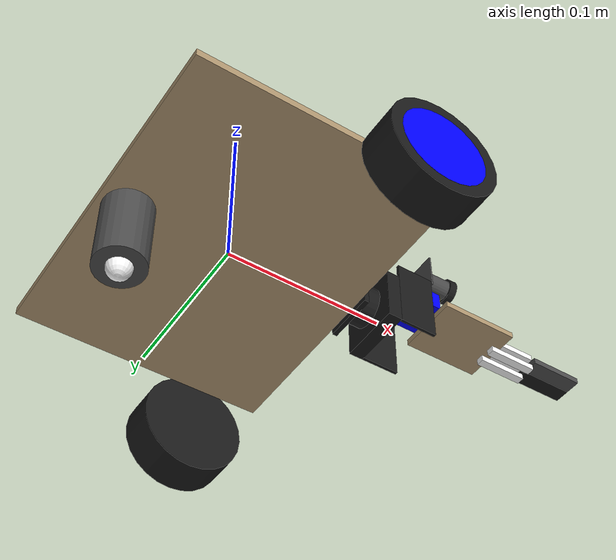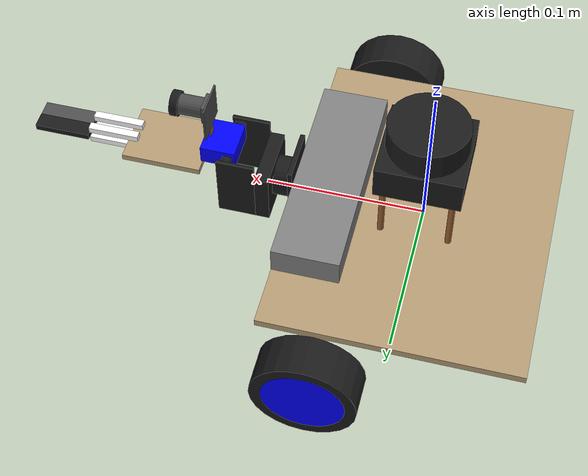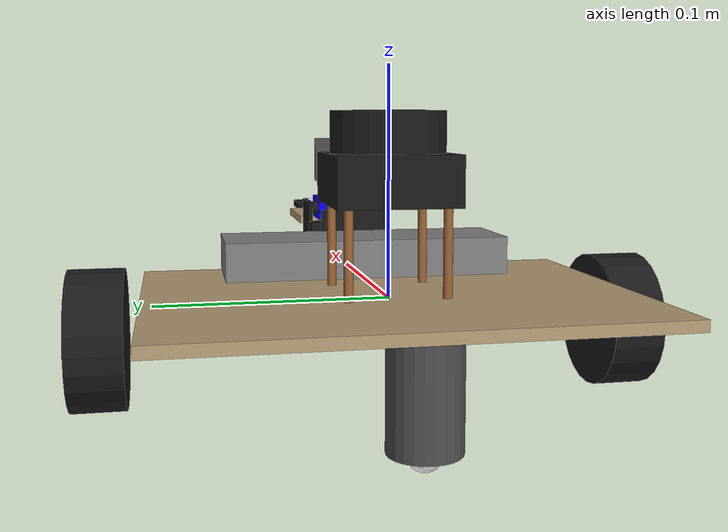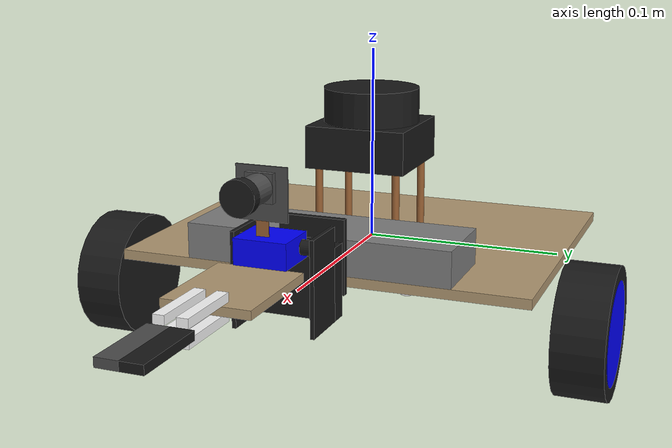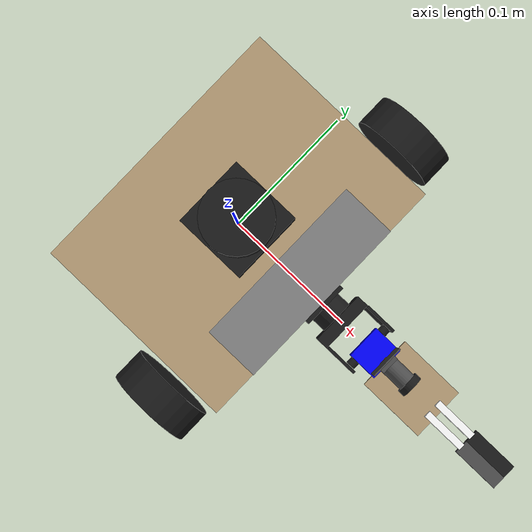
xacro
<?xml version="1.0"?>
<robot name="doall_robot" xmlns:xacro="http://ros.org/wiki/xacro">
 <!--
ros2 launch urdf_tutorial display.launch.py model:=/home/ghaith-mhamdi/warehouse_ws/src/doall/model/robot.xacro rvizconfig:=/home/ghaith-mhamdi/warehouse_ws/src/doall/rviz/robot_description.rviz
-->
<!--to view launch simulation from RVIZ :
rviz2 -d  /home/ghaith-mhamdi/warehouse_ws/src/doall/rviz/view_all.rviz
-->

<material name="red">
    <color rgba="1 0 0 1"/>
</material>

<material name="yellow">
    <color rgba="1 1 0 1"/>
</material>

<material name="blue">
    <color rgba="0 0 1 1"/>
</material>

<material name="green">
    <color rgba="0 1 0 1"/>
</material>

<material name="white">
    <color rgba="1 1 1 1"/>
</material>

<material name="black">
    <color rgba="0.1 0.1 0.1 1"/>
</material>

<material name="metallic_blue">
  <color rgba="0.2 0.4 0.8 1"/>
</material>

<material name="orange">
    <color rgba="1.0 0.5 0.0 1.0"/>
    <ambient>1.0 0.5 0.0 1.0</ambient>
    <diffuse>1.0 0.5 0.0 1.0</diffuse>
    <specular>0.1 0.1 0.1 1.0</specular>
</material>

<material name="gray">
  <color rgba="0.5 0.5 0.5 1.0"/>
</material>

<material name="dark_gray">
  <color rgba="0.3 0.3 0.3 1.0"/>
</material>

<material name="plywood_colour">
  <color rgba="0.70 0.60 0.45 1.0"/>
</material>

<material name="copper_colour">
  <color rgba="0.60 0.38 0.20 1.0"/>
</material>

<xacro:property name="pi_constant" value="3.141592"/>
<!--Body_Dimensions-->
<xacro:property name="a" value="0.16"/>
<xacro:property name="b" value="0.005"/>
<xacro:property name="c" value="0.210"/>
<!--WheelRight-->
<xacro:property name="r" value="0.0325"/>
<xacro:property name="d" value="0.025"/>
<xacro:property name="zw" value="0.0225"/>
<xacro:property name="xw" value="0.043"/>
<xacro:property name="yw" value="0.125"/>
<!--caster-->
<xacro:property name="rc" value="0.0075"/>
<xacro:property name="zc" value="${zw+r}"/>
<xacro:property name="xc" value="-0.062"/>
<!--Lidar-->
<xacro:property name="xl" value="0.002"/>
<xacro:property name="al" value="0.053"/>
<xacro:property name="rl" value="0.025"/>
<xacro:property name="drl" value="0.018"/>
<xacro:property name="dal" value="0.022"/>

<!--Materials_density(contre_plaqué,plastic)-->
<xacro:property name="d1" value="700.0"/>
<xacro:property name="d2" value="1400.0"/>

<!--Body_Mass-->
<xacro:property name="m1" value="${d1*a*b*c}"/>
<!--wheels_mass-->
<xacro:property name="m2" value="${d2*pi_constant*r*r*d}"/>
<!--CasterWheels_Mass-->
<xacro:property name="m3" value="${2*m2}"/>

<!--Body_MomentsOfInertia-->
<xacro:property name="Ix_body" value="${(1.0/12.0)*m1*(b*b+c*c)}"/>
<xacro:property name="Iy_body" value="${(1.0/12.0)*m1*(a*a+b*b)}"/>
<xacro:property name="Iz_body" value="${(1.0/12.0)*m1*(a*a+c*c)}"/>

<!--Wheels_MomentsOfInertia-->
<xacro:property name="Iz_wheel" value="${0.5*m2*r*r}"/>
<xacro:property name="I_wheel" value="${(1.0/12.0)*m2*(3*r*r+d*d)}"/>

<!--CasterSphere_MomentsOfInertia-->
<xacro:property name="Iz_caster" value="${0.5*m3*2*rc*2*rc}"/>
<xacro:property name="I_caster" value="${(1.0/12.0)*m3*(3*2*rc*2*rc+0.035*0.035)}"/>

<!--inertia-->
<xacro:macro name="inertia_body">
    <inertial>
        <origin xyz="0 0 0" rpy="0 0 0"/>
        <mass value="${m1}"/>
        <inertia ixx="${Ix_body}" ixy="0.0" ixz="0.0" iyy="${Iy_body}" iyz="0.0" izz="${Iz_body}"/>
    </inertial>
</xacro:macro>

<xacro:macro name="inertia_wheel">
    <inertial>
        <origin xyz="0 0 0" rpy="${pi_constant/2.0} 0 0"/>
        <mass value="${m2}"/>
        <inertia ixx="${I_wheel}" ixy="0.0" ixz="0.0" iyy="${I_wheel}" iyz="0.0" izz="${Iz_wheel}"/>
    </inertial>
</xacro:macro>

<xacro:macro name="inertia_caster">
    <inertial>
        <origin xyz="0 0 0" rpy="0 0 0"/>
        <mass value="${m3}"/>
        <inertia ixx="${I_caster}" ixy="0.0" ixz="0.0" iyy="${I_caster}" iyz="0.0" izz="${I_caster}"/>
    </inertial>
</xacro:macro>

<!-- Include base -->
<xacro:include filename="$(find doall)/model/base.xacro"/>
<!-- Include pan_tilt -->
<xacro:include filename="$(find doall)/model/pan_tilt.xacro"/>
<!-- Include gripper -->
<xacro:include filename="$(find doall)/model/gripper.xacro"/>
<!-- Include wheels -->
<xacro:include filename="$(find doall)/model/wheels.xacro"/>
<!-- Include lidar -->
<xacro:include filename="$(find doall)/model/lidar.xacro"/>
<!-- Include camera -->
<xacro:include filename="$(find doall)/model/camera.xacro"/>
<!--include the file that defines extra Gazebo options and motion control drivers-->
<xacro:include filename="$(find doall)/model/robot.gazebo.xacro" />

<!--joints-->
<link name="base_footprint"></link>
<joint name="base_link_joint" type="fixed">
    <parent link="base_footprint"/>
    <child link="base_link"/>
    <origin xyz="0 0 0" rpy="0 0 0"/>
</joint>

<joint name="wheel1_joint" type="continuous">
    <parent link="base_link"/>
    <child link="wheel1_link"/>
    <origin xyz="${xw} ${-yw} ${-zw}" rpy="0 0 0"/>
    <axis xyz="0 1 0"/>
    <limit effort="50000" velocity="10"/>
    <dynamics damping="0.00001" friction="0.00001"/>
</joint>

<joint name="wheel2_joint" type="continuous">
    <parent link="base_link"/>
    <child link="wheel2_link"/>
    <origin xyz="${xw} ${yw} ${-zw}" rpy="0 0 0"/>
    <axis xyz="0 1 0"/>
    <limit effort="50000" velocity="10"/>
    <dynamics damping="0.00001" friction="0.00001"/>
</joint>

<joint name="pan_tilt_joint" type="fixed">
    <parent link="base_link"/>
    <child link="base_pan_tilt"/>
    <origin xyz="${a/2+0.0015} 0 0.0085" rpy="0 -1.57 3.14"/>
</joint>

<joint name="gripper_joint" type="fixed">
    <parent link="part_3_link"/>
    <child link="gripper_base"/>
    <origin xyz="-0.008 0 0.041" rpy="0 -1.57 0"/>
</joint>

<joint name="camera_joint" type="fixed">
  <parent link="part_3_link"/>
  <child  link="camera_link"/>
  <origin xyz="0.026 0 0.013" rpy="3.14 -1.57 0"/>
</joint>

<link name="camera_link_optical"/>
<joint type="fixed" name="camera_optical_joint">
  <origin xyz="0.024 0 0" rpy="0 0 0"/>
  <child link="camera_link_optical"/>
  <parent link="camera_link"/>
</joint>

</robot>

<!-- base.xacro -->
<robot xmlns:xacro="http://ros.org/wiki/xacro">

  <!--robot_body-->
  <link name="base_link">
      <visual>
          <geometry>
              <box size="${a} ${c} ${b}"/>
          </geometry>
          <origin xyz="0 0 0" rpy="0 0 0"/>
          <material name="plywood_colour"/>
      </visual>
      <collision>
          <geometry>
              <box size="${a} ${c} ${b}"/>
          </geometry>
          <origin xyz="0 0 0" rpy="0 0 0"/>
      </collision>
      <xacro:inertia_body/>
  </link>

<link name="caster_link">
      <visual>
          <geometry>
              <cylinder radius="${2*rc}" length="${zc-rc}"/>
          </geometry>
          <origin xyz="0 0 0" rpy="0 0 0"/>
          <material name="dark_gray"/>
      </visual>

      <visual>
          <geometry>
              <sphere radius="${rc}"/>
          </geometry>
          <origin xyz="0 0 ${(-zc+rc)/2}" rpy="0 0 0"/>
          <material name="white"/>
      </visual>

      <collision>
          <geometry>
              <cylinder radius="${2*rc}" length="${zc-rc}"/>
          </geometry>
          <origin xyz="0 0 0" rpy="0 0 0"/>
      </collision>

      <collision>
          <geometry>
              <sphere radius="${rc}"/>
          </geometry>
          <origin xyz="0 0 ${(-zc+rc)/2}" rpy="0 0 0"/>
      </collision>

      <xacro:inertia_caster/>
  </link>
  <joint name="caster_joint" type="fixed">
      <parent link="base_link"/>
      <child link="caster_link"/>
      <origin xyz="${xc} 0 ${(-zc+rc)/2}" rpy="0 0 0"/>
  </joint>

  <link name="support_lidar">
      <visual>
          <geometry>
              <cylinder radius="0.002" length="0.038"/>
          </geometry>
          <origin xyz="0.021 0.021 0" rpy="0 0 0"/>
          <material name="copper_colour"/>
      </visual>
      <collision>
          <geometry>
              <cylinder radius="0.002" length="0.038"/>
          </geometry>
          <origin xyz="0.021 0.021 0" rpy="0 0 0"/>
      </collision>
      <visual>
          <geometry>
              <cylinder radius="0.002" length="0.038"/>
          </geometry>
          <origin xyz="-0.021 0.021 0" rpy="0 0 0"/>
          <material name="copper_colour"/>
      </visual>
      <collision>
          <geometry>
              <cylinder radius="0.002" length="0.038"/>
          </geometry>
          <origin xyz="-0.021 0.021 0" rpy="0 0 0"/>
      </collision>
      <visual>
          <geometry>
              <cylinder radius="0.002" length="0.038"/>
          </geometry>
          <origin xyz="0.021 -0.021 0" rpy="0 0 0"/>
          <material name="copper_colour"/>
      </visual>
      <collision>
          <geometry>
              <cylinder radius="0.002" length="0.038"/>
          </geometry>
          <origin xyz="0.021 -0.021 0" rpy="0 0 0"/>
      </collision>
      <visual>
          <geometry>
              <cylinder radius="0.002" length="0.038"/>
          </geometry>
          <origin xyz="-0.021 -0.021 0" rpy="0 0 0"/>
          <material name="copper_colour"/>
      </visual>
      <collision>
          <geometry>
              <cylinder radius="0.002" length="0.038"/>
          </geometry>
          <origin xyz="-0.021 -0.021 0" rpy="0 0 0"/>
      </collision>
  </link>
  <joint name="support_lidar_joint" type="fixed">
      <parent link="base_link"/>
      <child link="support_lidar"/>
      <origin xyz="0.002 0 ${b/2+0.019}" rpy="0 0 0"/>
  </joint>

  <link name="battery_link">
      <visual>
          <geometry>
              <box size="0.042 0.135 0.018"/>
          </geometry>
          <origin xyz="0 0 0" rpy="0 0 0"/>
          <material name="gray"/>
      </visual>
      <collision>
          <geometry>
              <box size="0.042 0.135 0.018"/>
          </geometry>
          <origin xyz="0 0 0" rpy="0 0 0"/>
      </collision>
      <inertial>
          <mass value="0.255"/>
          <origin xyz="0 0 0" rpy="0 0 0"/>
          <inertia ixx="3.94e-04" iyy="4.44e-05" izz="4.25e-04" ixy="0.0" ixz="0.0" iyz="0.0"/>
      </inertial>
  </link>
  <joint name="battery_joint" type="fixed">
      <parent link="base_link"/>
      <child link="battery_link"/>
      <origin xyz="${a/2-0.021} 0 ${b/2+0.009}" rpy="0 0 0"/>
  </joint>

</robot>

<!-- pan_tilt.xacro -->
<robot xmlns:xacro="http://ros.org/wiki/xacro">

    <link name="base_pan_tilt">
      <visual>
          <geometry>
              <box size="0.037 0.033 0.003"/>
          </geometry>
          <origin xyz="0.004 0 0" rpy="0 0 0"/>
          <material name="black"/>
      </visual>
      <collision>
          <geometry>
              <box size="0.037 0.033 0.003"/>
          </geometry>
          <origin xyz="0.004 0 0" rpy="0 0 0"/>
      </collision>
      <visual>
          <geometry>
              <cylinder radius="0.0125" length="0.011"/>
          </geometry>
          <origin xyz="0 0 0.007" rpy="0 0 0"/>
          <material name="black"/>
      </visual>
      <collision>
          <geometry>
              <cylinder radius="0.0125" length="0.011"/>
          </geometry>
          <origin xyz="0 0 0.007" rpy="0 0 0"/>
      </collision>
      <inertial>
        <mass value="0.02"/>
        <origin xyz="0 0 0.005" rpy="0 0 0"/>
        <inertia ixx="0.000003" ixy="0.0" ixz="0.0"
                 iyy="0.000003" iyz="0.0"
                 izz="0.000003"/>
      </inertial>
  </link>

  <link name="part_2_link">
      <visual>
          <geometry>
              <box size="0.035 0.040 0.009"/>
          </geometry>
          <origin xyz="-0.0025 0 0" rpy="0 0 0"/>
          <material name="black"/>
      </visual>
      <collision>
          <geometry>
              <box size="0.035 0.040 0.009"/>
          </geometry>
          <origin xyz="-0.0025 0 0" rpy="0 0 0"/>
      </collision>
      <visual>
          <geometry>
              <box size="0.045 0.002 0.024"/>
          </geometry>
          <origin xyz="0.0025 0.019 0.0165" rpy="0 0 0"/>
          <material name="black"/>
      </visual>
      <collision>
          <geometry>
              <box size="0.045 0.002 0.024"/>
          </geometry>
          <origin xyz="0.0025 0.019 0.0165" rpy="0 0 0"/>
      </collision>
      <visual>
          <geometry>
              <box size="0.045 0.002 0.024"/>
          </geometry>
          <origin xyz="0.0025 -0.019 0.0165" rpy="0 0 0"/>
          <material name="black"/>
      </visual>
      <collision>
          <geometry>
              <box size="0.045 0.002 0.024"/>
          </geometry>
          <origin xyz="0.0025 -0.019 0.0165" rpy="0 0 0"/>
      </collision>
      <inertial>
        <mass value="0.03"/>
        <origin xyz="0 0 0.01" rpy="0 0 0"/>
        <inertia ixx="0.00001" ixy="0.0" ixz="0.0"
                 iyy="0.00001" iyz="0.0"
                 izz="0.00001"/>
      </inertial>
  </link>
  <joint name="gripper_roll_joint" type="revolute">
      <parent link="base_pan_tilt"/>
      <child link="part_2_link"/>
      <origin xyz="0 0 0.0172" rpy="0 0 0"/>
      <axis xyz="0 0 1"/>
      <limit lower="-1.57" upper="1.57" effort="10" velocity="2.0"/>
      <dynamics damping="0.5" friction="0.1"/>
  </joint>

  <link name="part_3_link">
      <visual>
          <geometry>
              <box size="0.012 0.025 0.022"/>
          </geometry>
          <origin xyz="0 0 0.006" rpy="0 0 0"/>
          <material name="blue"/>
      </visual>
      <collision>
          <geometry>
              <box size="0.012 0.025 0.022"/>
          </geometry>
          <origin xyz="0 0 0.006" rpy="0 0 0"/>
      </collision>
      <visual>
          <geometry>
              <cylinder radius="0.0035" length="0.005"/>
          </geometry>
          <origin xyz="0 0.015 0" rpy="1.57 0 0"/>
          <material name="black"/>
      </visual>
      <collision>
          <geometry>
              <cylinder radius="0.0035" length="0.005"/>
          </geometry>
          <origin xyz="0 0.015 0" rpy="1.57 0 0"/>
      </collision>
      <visual>
          <geometry>
              <cylinder radius="0.0035" length="0.005"/>
          </geometry>
          <origin xyz="0 -0.015 0" rpy="1.57 0 0"/>
          <material name="black"/>
      </visual>
      <collision>
          <geometry>
              <cylinder radius="0.0035" length="0.005"/>
          </geometry>
          <origin xyz="0 -0.015 0" rpy="1.57 0 0"/>
      </collision>
      <inertial>
        <mass value="0.03"/>
        <origin xyz="0 0 0.006" rpy="0 0 0"/>
        <inertia ixx="0.000005" ixy="0.0" ixz="0.0"
                 iyy="0.000005" iyz="0.0"
                 izz="0.000005"/>
      </inertial>
  </link>
  <joint name="gripper_pitch_joint" type="revolute">
      <parent link="part_2_link"/>
      <child link="part_3_link"/>
      <origin xyz="0.020 0 0.0235" rpy="0 0 0"/>
      <axis xyz="0 1 0"/>
      <limit lower="-1.57" upper="1.57" effort="10" velocity="2.0"/>
      <dynamics damping="0.5" friction="0.1"/>
  </joint>

</robot>

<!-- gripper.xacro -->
<robot xmlns:xacro="http://ros.org/wiki/xacro">

  <!-- Base Link (Main Body) -->
  <link name="gripper_base">
    <visual>
      <origin xyz="0 0 0" rpy="0 0 0"/>
      <geometry>
        <box size="0.05 0.04 0.004"/>
      </geometry>
      <material name="plywood_colour"/>
    </visual>
    <collision>
      <origin xyz="0 0 0" rpy="0 0 0"/>
      <geometry>
        <box size="0.05 0.04 0.004"/>
      </geometry>
    </collision>
    <inertial>
      <mass value="0.010"/>
      <origin xyz="0 0 0" rpy="0 0 0"/>
      <inertia ixx="0.000005" ixy="0.0" ixz="0.0"
               iyy="0.000006" iyz="0.0"
               izz="0.000008"/>
    </inertial>
  </link>

  <!-- Left Upper Link (Linkage Arm) -->
  <link name="left_upper_link">
    <visual>
      <origin xyz="0.016 0 0" rpy="0 0 0"/>
      <geometry>
        <box size="0.032 0.005 0.004"/>
      </geometry>
      <material name="white"/>
    </visual>
    <collision>
      <origin xyz="0.016 0 0" rpy="0 0 0"/>
      <geometry>
        <box size="0.032 0.005 0.004"/>
      </geometry>
    </collision>
    <inertial>
      <mass value="0.005"/>
      <origin xyz="0.016 0 0" rpy="0 0 0"/>
      <inertia ixx="0.0000005" ixy="0.0" ixz="0.0"
               iyy="0.0000005" iyz="0.0"
               izz="0.0000005"/>
    </inertial>
  </link>

  <!-- Left Lower Link (Linkage Arm) -->
  <link name="left_lower_link">
    <visual>
      <origin xyz="0.016 0 0" rpy="0 0 0"/>
      <geometry>
        <box size="0.032 0.005 0.004"/>
      </geometry>
      <material name="white"/>
    </visual>
    <collision>
      <origin xyz="0.016 0 0" rpy="0 0 0"/>
      <geometry>
        <box size="0.032 0.005 0.004"/>
      </geometry>
    </collision>
    <inertial>
      <mass value="0.005"/>
      <origin xyz="0.016 0 0" rpy="0 0 0"/>
      <inertia ixx="0.0000005" ixy="0.0" ixz="0.0"
               iyy="0.0000005" iyz="0.0"
               izz="0.0000005"/>
    </inertial>
  </link>

  <!-- Left Finger (Parallel Part) -->
  <link name="left_finger">
    <visual>
      <origin xyz="0.0175 0 0" rpy="0 0 0"/>
      <geometry>
        <box size="0.035 0.01 0.004"/>
      </geometry>
      <material name="black">
        <color rgba="0.3 0.3 0.3 1.0"/>
      </material>
    </visual>
    <collision>
      <origin xyz="0.0175 0 0" rpy="0 0 0"/>
      <geometry>
        <box size="0.035 0.01 0.004"/>
      </geometry>
    </collision>
    <inertial>
      <mass value="0.005"/>
      <origin xyz="0.0175 0 0" rpy="0 0 0"/>
      <inertia ixx="0.0000013" ixy="0.0" ixz="0.0"
               iyy="0.0000013" iyz="0.0"
               izz="0.0000013"/>
    </inertial>
  </link>

  <!-- Right Upper Link (Linkage Arm) -->
  <link name="right_upper_link">
    <visual>
      <origin xyz="0.016 0 0" rpy="0 0 0"/>
      <geometry>
        <box size="0.032 0.005 0.004"/>
      </geometry>
      <material name="white"/>
    </visual>
    <collision>
      <origin xyz="0.016 0 0" rpy="0 0 0"/>
      <geometry>
        <box size="0.032 0.005 0.004"/>
      </geometry>
    </collision>
    <inertial>
      <mass value="0.005"/>
      <origin xyz="0.016 0 0" rpy="0 0 0"/>
      <inertia ixx="0.0000005" ixy="0.0" ixz="0.0"
               iyy="0.0000005" iyz="0.0"
               izz="0.0000005"/>
    </inertial>
  </link>

  <!-- Right Lower Link (Linkage Arm) -->
  <link name="right_lower_link">
    <visual>
      <origin xyz="0.016 0 0" rpy="0 0 0"/>
      <geometry>
        <box size="0.032 0.005 0.004"/>
      </geometry>
      <material name="white"/>
    </visual>
    <collision>
      <origin xyz="0.016 0 0" rpy="0 0 0"/>
      <geometry>
        <box size="0.032 0.005 0.004"/>
      </geometry>
    </collision>
    <inertial>
      <mass value="0.005"/>
      <origin xyz="0.016 0 0" rpy="0 0 0"/>
      <inertia ixx="0.0000005" ixy="0.0" ixz="0.0"
               iyy="0.0000005" iyz="0.0"
               izz="0.0000005"/>
    </inertial>
  </link>

  <!-- Right Finger (Parallel Part) -->
  <link name="right_finger">
    <visual>
      <origin xyz="0.0175 0 0" rpy="0 0 0"/>
      <geometry>
        <box size="0.035 0.01 0.004"/>
      </geometry>
      <material name="black"/>
    </visual>
    <collision>
      <origin xyz="0.0175 0 0" rpy="0 0 0"/>
      <geometry>
        <box size="0.035 0.01 0.004"/>
      </geometry>
    </collision>
    <inertial>
      <mass value="0.005"/>
      <origin xyz="0.0175 0 0" rpy="0 0 0"/>
      <inertia ixx="0.0000013" ixy="0.0" ixz="0.0"
               iyy="0.0000013" iyz="0.0"
               izz="0.0000013"/>
    </inertial>
  </link>

  <!-- LEFT SIDE JOINTS -->

  <!-- Joint: Base to Left Upper Link (Actuated - servo) -->
  <joint name="gripper_left_upper_joint" type="revolute">
    <parent link="gripper_base"/>
    <child link="left_upper_link"/>
    <origin xyz="0.019 0.005 0.004" rpy="0 0 0"/>
    <axis xyz="0 0 1"/>
    <limit lower="0" upper="1.57" effort="10" velocity="2.0"/>
    <dynamics damping="0.5" friction="0.1"/>
  </joint>

  <!-- Joint: Base to Left Lower Link (Passive - mimics upper) -->
  <joint name="left_lower_joint" type="revolute">
    <parent link="gripper_base"/>
    <child link="left_lower_link"/>
    <origin xyz="0.019 0.005 -0.004" rpy="0 0 0"/>
    <axis xyz="0 0 1"/>
    <limit lower="0" upper="1.57" effort="10" velocity="2.0"/>
    <dynamics damping="0.5" friction="0.1"/>
    <mimic joint="gripper_left_upper_joint" multiplier="1" offset="0"/>
  </joint>

  <!-- Joint: Left Upper Link to Left Finger -->
  <joint name="left_finger_upper_joint" type="revolute">
    <parent link="left_upper_link"/>
    <child link="left_finger"/>
    <origin xyz="0.032 0 -0.004" rpy="0 0 0"/>
    <axis xyz="0 0 1"/>
    <limit lower="0" upper="1.57" effort="10" velocity="2.0"/>
    <dynamics damping="0.5" friction="0.1"/>
    <mimic joint="gripper_left_upper_joint" multiplier="-1" offset="0"/>
  </joint>

  <!-- Joint: Left Lower Link to Left Finger -->

  <!-- RIGHT SIDE JOINTS (Mirror of left side) -->

  <!-- Joint: Base to Right Upper Link (Mimic left upper - symmetric) -->
  <joint name="right_upper_joint" type="revolute">
    <parent link="gripper_base"/>
    <child link="right_upper_link"/>
    <origin xyz="0.019 -0.005 0.004" rpy="0 0 0"/>
    <axis xyz="0 0 1"/>
    <limit lower="0" upper="1.57" effort="10" velocity="2.0"/>
    <dynamics damping="0.5" friction="0.1"/>
    <mimic joint="gripper_left_upper_joint" multiplier="-1" offset="0"/>
  </joint>

  <!-- Joint: Base to Right Lower Link -->
  <joint name="right_lower_joint" type="revolute">
    <parent link="gripper_base"/>
    <child link="right_lower_link"/>
    <origin xyz="0.019 -0.005 -0.004" rpy="0 0 0"/>
    <axis xyz="0 0 1"/>
    <limit lower="0" upper="1.57" effort="10" velocity="2.0"/>
    <dynamics damping="0.5" friction="0.1"/>
    <mimic joint="gripper_left_upper_joint" multiplier="-1" offset="0"/>
  </joint>

  <!-- Joint: Right Upper Link to Right Finger -->
  <joint name="right_finger_upper_joint" type="revolute">
    <parent link="right_upper_link"/>
    <child link="right_finger"/>
    <origin xyz="0.032 0 -0.004" rpy="0 0 0"/>
    <axis xyz="0 0 1"/>
    <limit lower="0" upper="1.57" effort="10" velocity="2.0"/>
    <dynamics damping="0.5" friction="0.1"/>
    <mimic joint="gripper_left_upper_joint" multiplier="1" offset="0"/>
  </joint>

  <!-- Joint: Right Lower Link to Right Finger -->

</robot>

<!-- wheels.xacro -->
<robot xmlns:xacro="http://ros.org/wiki/xacro">

  <link name="wheel1_link">
      <visual>
          <geometry>
              <cylinder radius="${r}" length="${d}"/>
          </geometry>
          <origin xyz="0 0 0" rpy="${pi_constant/2} 0 0"/>
          <material name="black"/>
      </visual>
      <collision>
          <geometry>
              <cylinder radius="${r}" length="${d}"/>
          </geometry>
          <origin xyz="0 0 0" rpy="${pi_constant/2} 0 0"/>
      </collision>
      <xacro:inertia_wheel/>
  </link>

  <link name="wheel2_link">
      <visual>
          <geometry>
              <cylinder radius="${r}" length="${d}"/>
          </geometry>
          <origin xyz="0 0 0" rpy="${pi_constant/2} 0 0"/>
          <material name="black"/>
      </visual>
      <collision>
          <geometry>
              <cylinder radius="${r}" length="${d}"/>
          </geometry>
          <origin xyz="0 0 0" rpy="${pi_constant/2} 0 0"/>
      </collision>
      <xacro:inertia_wheel/>
  </link>

<!--decor-->
<link name="wheel1_decor">
      <visual>
          <geometry>
              <cylinder radius="${r-0.007}" length="0.0001"/>
          </geometry>
          <origin xyz="0 ${-d/2} 0" rpy="${pi_constant/2} 0 0"/>
          <material name="blue"/>
      </visual>
  </link>
  <joint name="wheel1_decor_joint" type="fixed">
      <parent link="wheel1_link"/>
      <child link="wheel1_decor"/>
      <origin xyz="0 0 0" rpy="0 0 0"/>
  </joint>

  <link name="wheel2_decor">
      <visual>
          <geometry>
              <cylinder radius="${r-0.007}" length="0.0001"/>
          </geometry>
          <origin xyz="0 ${d/2} 0" rpy="${pi_constant/2} 0 0"/>
          <material name="blue"/>
      </visual>
  </link>
  <joint name="wheel2_decor_joint" type="fixed">
      <parent link="wheel2_link"/>
      <child link="wheel2_decor"/>
      <origin xyz="0 0 0" rpy="0 0 0"/>
  </joint>

</robot>

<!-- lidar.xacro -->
<robot xmlns:xacro="http://ros.org/wiki/xacro">

  <link name="lidar_link">
      <visual>
          <geometry>
              <cylinder length="0.018" radius="0.025"/>
          </geometry>
          <origin xyz="0 0 0.011" rpy="0 0 0"/>
          <material name="black"/>
      </visual>
      <visual>
          <geometry>
              <box size="0.053 0.053 0.022"/>
          </geometry>
          <origin xyz="0 0 -0.009" rpy="0 0 0"/>
          <material name="black"/>
      </visual>
      <collision>
          <geometry>
              <cylinder length="0.018" radius="0.025"/>
          </geometry>
          <origin xyz="0 0 0.011" rpy="0 0 0"/>
      </collision>
      <collision>
          <geometry>
              <box size="0.053 0.053 0.022"/>
          </geometry>
          <origin xyz="0 0 -0.009" rpy="0 0 0"/>
      </collision>
      <inertial>
          <mass value="0.16"/>
          <origin xyz="0 0 -0.007" rpy="0 0 0"/>
          <inertia ixx="6.5e-05" iyy="6.5e-05" izz="7.5e-05" ixy="0.0" ixz="0.0" iyz="0.0"/>
      </inertial>
  </link>
  <joint name="lidar_joint" type="fixed">
      <parent link="support_lidar"/>
      <child link="lidar_link"/>
      <origin xyz="0 0 0.039" rpy="0 0 0"/>
  </joint>

</robot>

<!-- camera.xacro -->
<robot xmlns:xacro="http://ros.org/wiki/xacro">

  <link name="camera_link">
      <visual>
          <geometry>
              <box size="0.001 0.024 0.024"/>
          </geometry>
          <origin xyz="0 0 0" rpy="0 0 0"/>
          <material name="dark_gray"/>
      </visual>
      <collision>
          <geometry>
              <box size="0.001 0.024 0.024"/>
          </geometry>
          <origin xyz="0 0 0" rpy="0 0 0"/>
      </collision>
      <visual>
          <geometry>
              <box size="0.003 0.013 0.013"/>
          </geometry>
          <origin xyz="0.002 0 0.003" rpy="0 0 0"/>
          <material name="dark_gray"/>
      </visual>
      <collision>
          <geometry>
              <box size="0.003 0.013 0.013"/>
          </geometry>
          <origin xyz="0.002 0 0.003" rpy="0 0 0"/>
      </collision>
      <visual>
          <geometry>
              <cylinder radius="0.0065" length="0.015"/>
          </geometry>
          <origin xyz="0.011 0 0.003" rpy="0 1.57 0"/>
          <material name="dark_gray"/>
      </visual>
      <collision>
          <geometry>
              <cylinder radius="0.0065" length="0.015"/>
          </geometry>
          <origin xyz="0.011 0 0.003" rpy="0 1.57 0"/>
      </collision>
      <visual>
          <geometry>
              <cylinder radius="0.008" length="0.005"/>
          </geometry>
          <origin xyz="0.021 0 0.003" rpy="0 1.57 0"/>
          <material name="black"/>
      </visual>
      <collision>
          <geometry>
              <cylinder radius="0.008" length="0.005"/>
          </geometry>
          <origin xyz="0.021 0 0.003" rpy="0 1.57 0"/>
      </collision>
      <inertial>
        <mass value="0.01"/>
        <origin xyz="0 0 0" rpy="0 0 0"/>
        <inertia ixx="1e-5" ixy="0" ixz="0" iyy="1e-5" iyz="0" izz="1e-5"/>
      </inertial>
  </link>
  <link name="support_camera_link">
      <visual>
          <geometry>
              <box size="0.0005 0.006 0.007"/>
          </geometry>
          <origin xyz="0 0 0" rpy="0 0 0"/>
          <material name="copper_colour"/>
      </visual>
      <collision>
          <geometry>
              <box size="0.0005 0.006 0.007"/>
          </geometry>
          <origin xyz="0 0 0" rpy="0 0 0"/>
      </collision>
  </link>
  <joint type="fixed" name="support_joint">
    <parent link="camera_link"/>
    <child link="support_camera_link"/>
    <origin xyz="0 0 -0.0155" rpy="0 0 0"/>

  </joint>

</robot>
